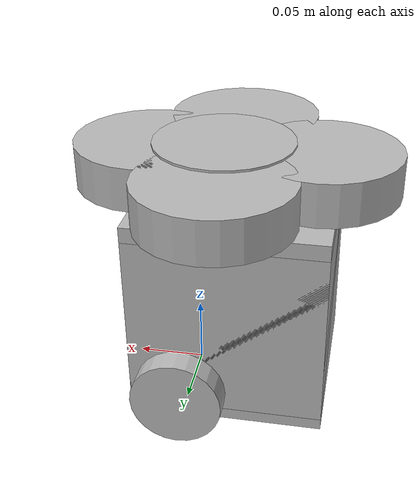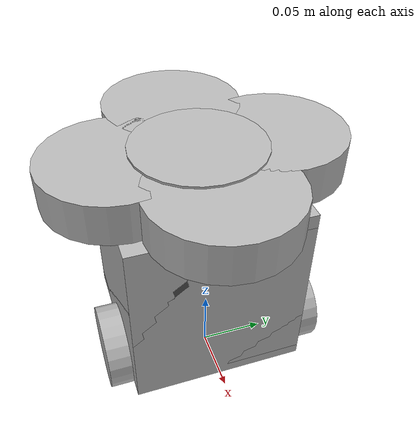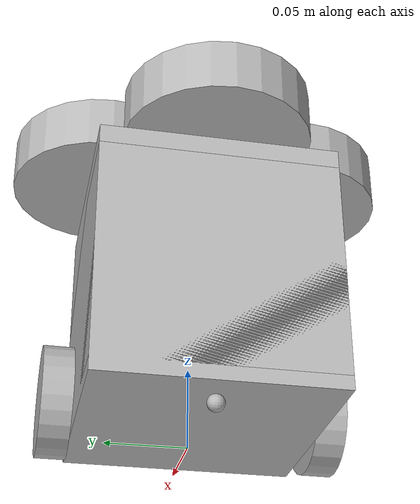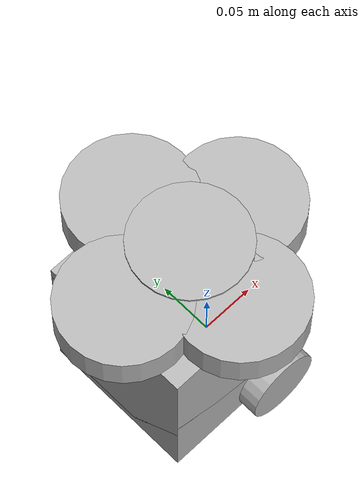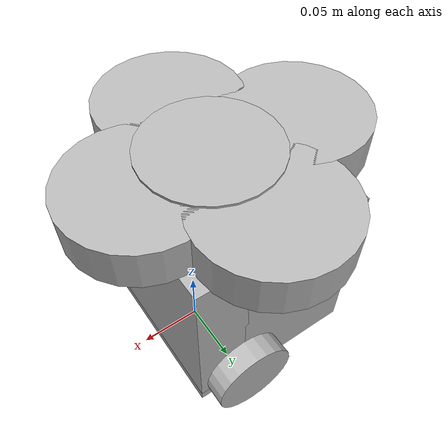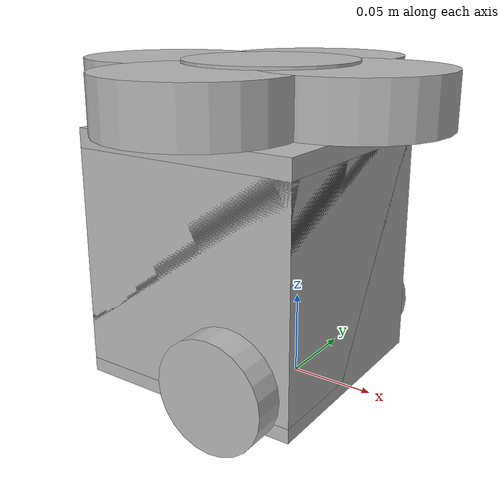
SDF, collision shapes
<?xml version="1.0" ?>
<sdf version="1.5">
  <model name="sonar_bot
  ">
    <pose>0.0 0.0 0.0 0.0 0.0 0.0</pose>

    <link name='base_footprint'>
      <inertial>
        <pose>-0.000481 0 0.009979 0 -0 0</pose>
        <mass>0.830745</mass>
        <inertia>
          <ixx>0.0032141</ixx>
          <ixy>-1.22941e-05</ixy>
          <ixz>3.21273e-05</ixz>
          <iyy>0.00315614</iyy>
          <iyz>-5.01209e-06</iyz>
          <izz>0.00304254</izz>
        </inertia>
      </inertial>
      <collision name='base_footprint_fixed_joint_lump__base_link_collision'>
        <pose>-0.032 0 0.08 0 -0 0</pose>
        <geometry>
          <box>
            <size>0.14 0.14 0.143</size>
          </box>
        </geometry>
      </collision>
      <collision name='base_footprint_fixed_joint_lump__caster_back_link_collision_1'>
        <pose>-0.081 1e-06 0.005 -1.57 0 0</pose>
        <geometry>
          <box>
            <size>0.03 0.009 0.02</size>
          </box>
        </geometry>
      </collision>
      <collision name='base_footprint_fixed_joint_lump__base_sonar_front_collision_1'>
        <pose>0.032 0 0.171 0 0 0</pose>
        <geometry>
          <box>
            <size>0.01 0.01 0.01</size>
          </box>
        </geometry>
        <surface>
          <contact>
            <ode/>
          </contact>
          <friction>
            <ode/>
          </friction>
        </surface>
      </collision>
      <collision name='base_footprint_fixed_joint_lump__base_sonar_front_collision_2'>
        <pose>0.032 0 0.171 0 0 0</pose>
        <geometry>
          <cylinder>
            <length>0.0315</length>
            <radius>0.055</radius>
          </cylinder>
        </geometry>
        <surface>
          <contact>
            <ode/>
          </contact>
          <friction>
            <ode/>
          </friction>
        </surface>
      </collision>
            <collision name='base_footprint_fixed_joint_lump__base_sonar_left_collision_1'>
        <pose>-0.025 0.06 0.171 0 0 1.57</pose>
        <geometry>
          <box>
            <size>0.01 0.01 0.01</size>
          </box>
        </geometry>
        <surface>
          <contact>
            <ode/>
          </contact>
          <friction>
            <ode/>
          </friction>
        </surface>
      </collision>
      <collision name='base_footprint_fixed_joint_lump__base_sonar_left_collision_2'>
        <pose>-0.025 0.06 0.171 0 0 1.57</pose>
        <geometry>
          <cylinder>
            <length>0.0315</length>
            <radius>0.055</radius>
          </cylinder>
        </geometry>
        <surface>
          <contact>
            <ode/>
          </contact>
          <friction>
            <ode/>
          </friction>
        </surface>
      </collision>

      <collision name='base_footprint_fixed_joint_lump__base_sonar_right_collision_1'>
        <pose>-0.025 -0.06 0.171 0 0 4.7</pose>
        <geometry>
          <box>
            <size>0.01 0.01 0.01</size>
          </box>
        </geometry>
        <surface>
          <contact>
            <ode/>
          </contact>
          <friction>
            <ode/>
          </friction>
        </surface>
      </collision>
      <collision name='base_footprint_fixed_joint_lump__base_sonar_right_collision_2'>
        <pose>-0.025 -0.06 0.171 0 0 4.7</pose>
        <geometry>
          <cylinder>
            <length>0.0315</length>
            <radius>0.055</radius>
          </cylinder>
        </geometry>
        <surface>
          <contact>
            <ode/>
          </contact>
          <friction>
            <ode/>
          </friction>
        </surface>
      </collision>
      <collision name='base_footprint_fixed_joint_lump__base_sonar_rear_collision_1'>
        <pose>-0.09 0 0.171 0 0 3.14</pose>
        <geometry>
          <box>
            <size>0.01 0.01 0.01</size>
          </box>
        </geometry>
        <surface>
          <contact>
            <ode/>
          </contact>
          <friction>
            <ode/>
          </friction>
        </surface>
      </collision>
      <collision name='base_footprint_fixed_joint_lump__base_sonar_rear_collision_2'>
        <pose>-0.09 0 0.171 0 0 3.14</pose>
        <geometry>
          <cylinder>
            <length>0.0315</length>
            <radius>0.055</radius>
          </cylinder>
        </geometry>
        <surface>
          <contact>
            <ode/>
          </contact>
          <friction>
            <ode/>
          </friction>
        </surface>
      </collision>
      <visual name='base_footprint_fixed_joint_lump__base_link_visual'>
        <pose>-0.032 0 0.01 0 -0 0</pose>
        <geometry>
          <mesh>
            <scale>0.001 0.001 0.001</scale>
            <uri>model://turtlebot3_description/meshes/bases/burger_base.stl</uri>
          </mesh>
        </geometry>
      </visual>
      <visual name='base_footprint_fixed_joint_lump__base_sonar_visual_front'>
        <pose>0.032 0 0.171 0 0 0</pose>
        <geometry>
          <box>
            <size>0.01 0.01 0.01</size>
          </box>
        </geometry>
      </visual>
      <sensor name='TeraRanger' type='ray'>
        <visualize>1</visualize>
        <update_rate>50</update_rate>
        <ray>
          <scan>
            <horizontal>
              <samples>10</samples>
              <resolution>1</resolution>
              <min_angle>-0.2</min_angle>
              <max_angle>0.2</max_angle>
            </horizontal>
            <vertical>
              <samples>10</samples>
              <resolution>1</resolution>
              <min_angle>-0.2</min_angle>
              <max_angle>0.2</max_angle>
            </vertical>
          </scan>
          <range>
            <min>0.1</min>
            <max>5</max>
            <resolution>0.05</resolution>
          </range>
        </ray>
        <plugin name='gazebo_ros_range' filename='libgazebo_ros_range.so'>
          <ros>
            <remapping>~/out:=/sensor/sonar_front</remapping>
          </ros>
          <gaussianNoise>0.005</gaussianNoise>
          <alwaysOn>1</alwaysOn>
          <updateRate>50</updateRate>
          <topicName>sensor/ir_front</topicName>
          <frameName>base_ir_front</frameName>
          <radiation>INFRARED</radiation>
          <fov>0.5</fov>
        </plugin>
        <pose>0.032 0 0.171 0 0 0</pose>
      </sensor>
      <visual name='base_footprint_fixed_joint_lump__base_sonar_visual_left'>
        <pose>-0.025 0.06 0.171 0 0 1.57</pose>
        <geometry>
          <box>
            <size>0.01 0.01 0.01</size>
          </box>
        </geometry>
      </visual>
      <sensor name='TeraRanger' type='ray'>
        <visualize>1</visualize>
        <update_rate>25</update_rate>
        <ray>
          <scan>
            <horizontal>
              <samples>10</samples>
              <resolution>1</resolution>
              <min_angle>-0.2</min_angle>
              <max_angle>0.2</max_angle>
            </horizontal>
            <vertical>
              <samples>10</samples>
              <resolution>1</resolution>
              <min_angle>-0.2</min_angle>
              <max_angle>0.2</max_angle>
            </vertical>
          </scan>
          <range>
            <min>0.1</min>
            <max>5</max>
            <resolution>0.05</resolution>
          </range>
        </ray>
        <plugin name='gazebo_ros_range' filename='libgazebo_ros_range.so'>
          <ros>
            <remapping>~/out:=/sensor/sonar_left</remapping>
          </ros>
          <gaussianNoise>0.005</gaussianNoise>
          <alwaysOn>1</alwaysOn>
          <updateRate>50</updateRate>
          <topicName>sensor/ir_left</topicName>
          <frameName>base_ir_left</frameName>
          <radiation>INFRARED</radiation>
          <fov>0.5</fov>
        </plugin>
        <pose>-0.025 0.06 0.171 0 0 1.57</pose>
      </sensor>
      <visual name='base_footprint_fixed_joint_lump__base_sonar_visual_right'>
        <pose>-0.025 -0.06 0.171 0 0 4.7</pose>
        <geometry>
          <box>
            <size>0.01 0.01 0.01</size>
          </box>
        </geometry>
      </visual>
      <sensor name='TeraRanger' type='ray'>
        <visualize>1</visualize>
        <update_rate>25</update_rate>
        <ray>
          <scan>
            <horizontal>
              <samples>10</samples>
              <resolution>1</resolution>
              <min_angle>-0.2</min_angle>
              <max_angle>0.2</max_angle>
            </horizontal>
            <vertical>
              <samples>10</samples>
              <resolution>1</resolution>
              <min_angle>-0.2</min_angle>
              <max_angle>0.2</max_angle>
            </vertical>
          </scan>
          <range>
            <min>0.1</min>
            <max>5</max>
            <resolution>0.05</resolution>
          </range>
        </ray>
        <plugin name='gazebo_ros_range' filename='libgazebo_ros_range.so'>
          <ros>
            <remapping>~/out:=/sensor/sonar_right</remapping>
          </ros>
          <gaussianNoise>0.005</gaussianNoise>
          <alwaysOn>1</alwaysOn>
          <updateRate>25</updateRate>
          <topicName>sensor/ir_right</topicName>
          <frameName>base_ir_right</frameName>
          <radiation>INFRARED</radiation>
          <fov>0.5</fov>
        </plugin>
        <pose>-0.025 -0.06 0.171 0 0 4.7</pose>
      </sensor>
      <visual name='base_footprint_fixed_joint_lump__base_sonar_visual_rear'>
        <pose>-0.09 0 0.171 0 0 3.14</pose>
        <geometry>
          <box>
            <size>0.01 0.01 0.01</size>
          </box>
        </geometry>
      </visual>
      <sensor name='TeraRanger' type='ray'>
        <visualize>1</visualize>
        <update_rate>50</update_rate>
        <ray>
          <scan>
            <horizontal>
              <samples>10</samples>
              <resolution>1</resolution>
              <min_angle>-0.2</min_angle>
              <max_angle>0.2</max_angle>
            </horizontal>
            <vertical>
              <samples>10</samples>
              <resolution>1</resolution>
              <min_angle>-0.2</min_angle>
              <max_angle>0.2</max_angle>
            </vertical>
          </scan>
          <range>
            <min>0.1</min>
            <max>5</max>
            <resolution>0.05</resolution>
          </range>
        </ray>
        <plugin name='gazebo_ros_range' filename='libgazebo_ros_range.so'>
          <ros>
            <remapping>~/out:=/sensor/sonar_rear</remapping>
          </ros>
          <gaussianNoise>0.005</gaussianNoise>
          <alwaysOn>1</alwaysOn>
          <updateRate>25</updateRate>
          <topicName>sensor/ir_rear</topicName>
          <frameName>base_ir_rear</frameName>
          <radiation>INFRARED</radiation>
          <fov>0.5</fov>
        </plugin>
        <pose>-0.09 0 0.171 0 0 3.14</pose>
      </sensor>
    </link>

    <link name="base_link">

      <inertial>
        <pose>-0.032 0 0.070 0 0 0</pose>
        <inertia>
          <ixx>7.2397393e-01</ixx>
          <ixy>4.686399e-10</ixy>
          <ixz>-1.09525703e-08</ixz>
          <iyy>7.2397393e-01</iyy>
          <iyz>2.8582649e-09</iyz>
          <izz>6.53050163e-01</izz>
        </inertia>
        <mass>8.2573504e-01</mass>
      </inertial>

      <collision name="base_collision">
        <pose>-0.032 0 0.070 0 0 0</pose>
        <geometry>
          <box>
            <size>0.140 0.140 0.140</size>
          </box>
        </geometry>
      </collision>

      <visual name="base_visual">
        <pose>-0.032 0 0 0 0 0</pose>
        <geometry>
          <mesh>
            <uri>model://turtlebot3_burger/meshes/burger_base.dae</uri>
            <scale>0.001 0.001 0.001</scale>
          </mesh>
        </geometry>
      </visual>
    </link>

    <link name="imu_link">
      <sensor name="tb3_imu" type="imu">
        <always_on>true</always_on>
        <update_rate>200</update_rate>
        <imu>
          <angular_velocity>
            <x>
              <noise type="gaussian">
                <mean>0.0</mean>
                <stddev>2e-4</stddev>
              </noise>
            </x>
            <y>
              <noise type="gaussian">
                <mean>0.0</mean>
                <stddev>2e-4</stddev>
              </noise>
            </y>
            <z>
              <noise type="gaussian">
                <mean>0.0</mean>
                <stddev>2e-4</stddev>
              </noise>
            </z>
          </angular_velocity>
          <linear_acceleration>
            <x>
              <noise type="gaussian">
                <mean>0.0</mean>
                <stddev>1.7e-2</stddev>
              </noise>
            </x>
            <y>
              <noise type="gaussian">
                <mean>0.0</mean>
                <stddev>1.7e-2</stddev>
              </noise>
            </y>
            <z>
              <noise type="gaussian">
                <mean>0.0</mean>
                <stddev>1.7e-2</stddev>
              </noise>
            </z>
          </linear_acceleration>
        </imu>
        <plugin name="turtlebot3_imu" filename="libgazebo_ros_imu_sensor.so">
          <ros>
            <remapping>~/out:=imu</remapping>
          </ros>
        </plugin>
      </sensor>
    </link>

    <link name="base_scan">
      <inertial>
        <pose>-0.020 0 0.161 0 0 0</pose>
        <inertia>
          <ixx>0.001</ixx>
          <ixy>0.000</ixy>
          <ixz>0.000</ixz>
          <iyy>0.001</iyy>
          <iyz>0.000</iyz>
          <izz>0.001</izz>
        </inertia>
        <mass>0.114</mass>
      </inertial>

    <collision name="lidar_sensor_collision">
        <pose>-0.020 0 0.161 0 0 0</pose>
        <geometry>
          <cylinder>
            <radius>0.0508</radius>
            <length>0.055</length>
          </cylinder>
        </geometry>
      </collision>

      <visual name="lidar_sensor_visual">
        <pose>-0.032 0 0.171 0 0 0</pose>
        <geometry>
          <mesh>
            <uri>model://turtlebot3_burger/meshes/lds.dae</uri>
            <scale>0.001 0.001 0.001</scale>
          </mesh>
        </geometry>
      </visual>

      <sensor name="hls_lfcd_lds" type="ray">
        <always_on>true</always_on>
        <visualize>true</visualize>
        <pose>-0.032 0 0.171 0 0 0</pose>
        <update_rate>5</update_rate>
        <ray>
          <scan>
            <horizontal>
              <samples>360</samples>
              <resolution>1.000000</resolution>
              <min_angle>0.000000</min_angle>
              <max_angle>6.280000</max_angle>
            </horizontal>
          </scan>
          <range>
            <min>0.120000</min>
            <max>3.5</max>
            <resolution>0.015000</resolution>
          </range>
          <noise>
            <type>gaussian</type>
            <mean>0.0</mean>
            <stddev>0.01</stddev>
          </noise>
        </ray>
        <plugin name="turtlebot3_laserscan" filename="libgazebo_ros_ray_sensor.so">
          <ros>
            <remapping>~/out:=scan</remapping>
          </ros>
          <output_type>sensor_msgs/LaserScan</output_type>
          <frame_name>base_scan</frame_name>
        </plugin>
      </sensor>
    </link>

    <link name="wheel_left_link">

      <inertial>
        <pose>0 0.08 0.023 -1.57 0 0</pose>
        <inertia>
          <ixx>1.8158194e-03</ixx>
          <ixy>-9.3392e-12</ixy>
          <ixz>1.04909e-11</ixz>
          <iyy>3.2922126e-03</iyy>
          <iyz>5.75694e-11</iyz>
          <izz>1.8158194e-03</izz>
        </inertia>
        <mass>2.8498940e-02</mass>
      </inertial>

      <collision name="wheel_left_collision">
        <pose>0 0.08 0.023 -1.57 0 0</pose>
        <geometry>
          <cylinder>
            <radius>0.033</radius>
            <length>0.018</length>
          </cylinder>
        </geometry>
        <surface>
          <!-- This friction pamareter don't contain reliable data!! -->
          <friction>
            <ode>
              <mu>100000.0</mu>
              <mu2>100000.0</mu2>
              <fdir1>0 0 0</fdir1>
              <slip1>0.0</slip1>
              <slip2>0.0</slip2>
            </ode>
          </friction>
          <contact>
            <ode>
              <soft_cfm>0</soft_cfm>
              <soft_erp>0.2</soft_erp>
              <kp>1e+5</kp>
              <kd>1</kd>
              <max_vel>0.01</max_vel>
              <min_depth>0.001</min_depth>
            </ode>
          </contact>
        </surface>
      </collision>

      <visual name="wheel_left_visual">
        <pose>0 0.08 0.023 0 0 0</pose>
        <geometry>
          <mesh>
            <uri>model://turtlebot3_burger/meshes/tire.dae</uri>
            <scale>0.001 0.001 0.001</scale>
          </mesh>
        </geometry>
      </visual>
    </link>

    <link name="wheel_right_link">

      <inertial>
        <pose>0.0 -0.08 0.023 -1.57 0 0</pose>
        <inertia>
          <ixx>1.8158194e-03</ixx>
          <ixy>-9.3392e-12</ixy>
          <ixz>1.04909e-11</ixz>
          <iyy>3.2922126e-03</iyy>
          <iyz>5.75694e-11</iyz>
          <izz>1.8158194e-03</izz>
        </inertia>
        <mass>2.8498940e-02</mass>
      </inertial>

      <collision name="wheel_right_collision">
        <pose>0.0 -0.08 0.023 -1.57 0 0</pose>
        <geometry>
          <cylinder>
            <radius>0.033</radius>
            <length>0.018</length>
          </cylinder>
        </geometry>
        <surface>
          <!-- This friction pamareter don't contain reliable data!! -->
          <friction>
            <ode>
              <mu>100000.0</mu>
              <mu2>100000.0</mu2>
              <fdir1>0 0 0</fdir1>
              <slip1>0.0</slip1>
              <slip2>0.0</slip2>
            </ode>
          </friction>
          <contact>
            <ode>
              <soft_cfm>0</soft_cfm>
              <soft_erp>0.2</soft_erp>
              <kp>1e+5</kp>
              <kd>1</kd>
              <max_vel>0.01</max_vel>
              <min_depth>0.001</min_depth>
            </ode>
          </contact>
        </surface>
      </collision>

      <visual name="wheel_right_visual">
        <pose>0.0 -0.08 0.023 0 0 0</pose>
        <geometry>
          <mesh>
            <uri>model://turtlebot3_burger/meshes/tire.dae</uri>
            <scale>0.001 0.001 0.001</scale>
          </mesh>
        </geometry>
      </visual>
    </link>

    <link name='caster_back_link'>
      <pose>-0.081 0 -0.004 -1.57 0 0</pose>
      <inertial>
        <mass>0.005</mass>
        <inertia>
          <ixx>0.001</ixx>
          <ixy>0.000</ixy>
          <ixz>0.000</ixz>
          <iyy>0.001</iyy>
          <iyz>0.000</iyz>
          <izz>0.001</izz>
        </inertia>
      </inertial>
      <collision name='collision'>
        <geometry>
          <sphere>
            <radius>0.005000</radius>
          </sphere>
        </geometry>
        <surface>
          <contact>
            <ode>
              <soft_cfm>0</soft_cfm>
              <soft_erp>0.2</soft_erp>
              <kp>1e+5</kp>
              <kd>1</kd>
              <max_vel>0.01</max_vel>
              <min_depth>0.001</min_depth>
            </ode>
          </contact>
        </surface>
      </collision>
    </link>

    <joint name="base_joint" type="fixed">
      <parent>base_footprint</parent>
      <child>base_link</child>
      <pose>0.0 0.0 0.010 0 0 0</pose>
    </joint>

    <joint name="wheel_left_joint" type="revolute">
      <parent>base_link</parent>
      <child>wheel_left_link</child>
      <pose>0.0 0.08 0.023 -1.57 0 0</pose>
      <axis>
        <xyz>0 0 1</xyz>
      </axis>
    </joint>

    <joint name="wheel_right_joint" type="revolute">
      <parent>base_link</parent>
      <child>wheel_right_link</child>
      <pose>0.0 -0.08 0.023 -1.57 0 0</pose>
      <axis>
        <xyz>0 0 1</xyz>
      </axis>
    </joint>

    <joint name='caster_back_joint' type='ball'>
      <parent>base_link</parent>
      <child>caster_back_link</child>
    </joint>

    <joint name="imu_joint" type="fixed">
      <parent>base_link</parent>
      <child>imu_link</child>
      <pose>-0.032 0 0.068 0 0 0</pose>
      <axis>
        <xyz>0 0 1</xyz>
      </axis>
    </joint>

    <collision name="lidar_sensor_collision">
        <pose>-0.020 0 0.161 0 0 0</pose>
        <geometry>
          <cylinder>
            <radius>0.0508</radius>
            <length>0.055</length>
          </cylinder>
        </geometry>
      </collision>

      <visual name="lidar_sensor_visual">
        <pose>-0.032 0 0.171 0 0 0</pose>
        <geometry>
          <mesh>
            <uri>model://turtlebot3_burger/meshes/lds.dae</uri>
            <scale>0.001 0.001 0.001</scale>
          </mesh>
        </geometry>
      </visual>

    <plugin name="turtlebot3_diff_drive" filename="libgazebo_ros_diff_drive.so">

      <ros>
      </ros>

      <update_rate>30</update_rate>

      <!-- wheels -->
      <left_joint>wheel_left_joint</left_joint>
      <right_joint>wheel_right_joint</right_joint>

      <!-- kinematics -->
      <wheel_separation>0.160</wheel_separation>
      <wheel_diameter>0.066</wheel_diameter>

      <!-- limits -->
      <max_wheel_torque>20</max_wheel_torque>
      <max_wheel_acceleration>1.0</max_wheel_acceleration>

      <command_topic>cmd_vel</command_topic>

      <!-- output -->
      <publish_odom>true</publish_odom>
      <publish_odom_tf>true</publish_odom_tf>
      <publish_wheel_tf>false</publish_wheel_tf>

      <odometry_topic>odom</odometry_topic>
      <odometry_frame>odom</odometry_frame>
      <robot_base_frame>base_footprint</robot_base_frame>

    </plugin>

    <plugin name="turtlebot3_joint_state" filename="libgazebo_ros_joint_state_publisher.so">
      <ros>
        <remapping>~/out:=joint_states</remapping>
      </ros>
      <update_rate>30</update_rate>
      <joint_name>wheel_left_joint</joint_name>
      <joint_name>wheel_right_joint</joint_name>
    </plugin>
  </model>
</sdf>
